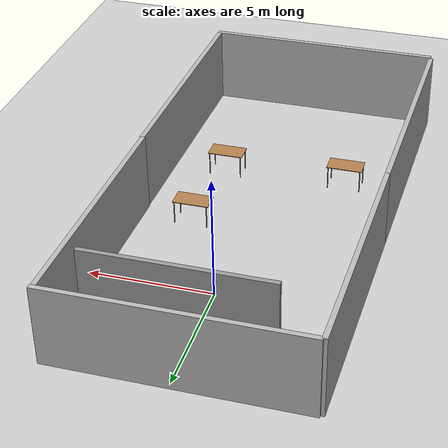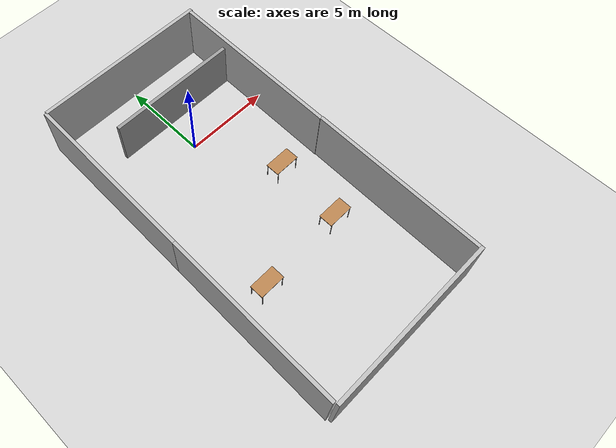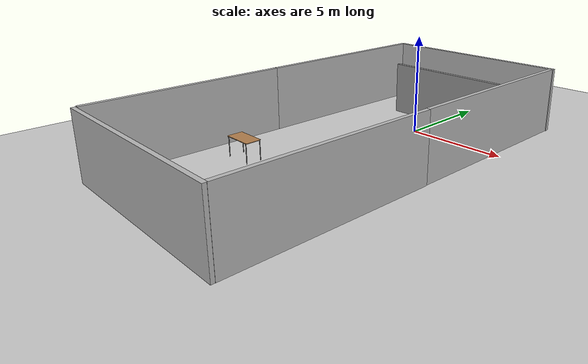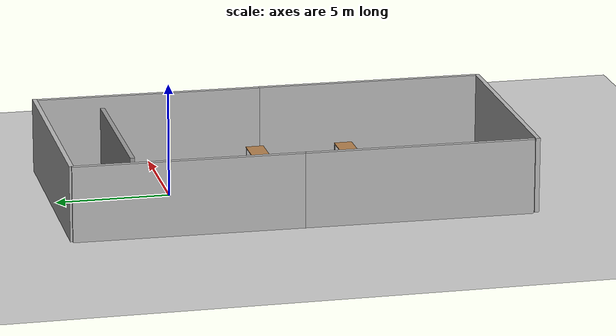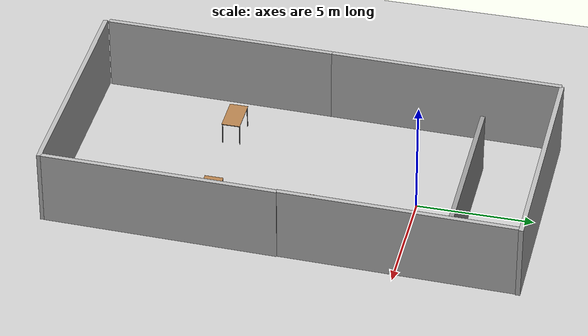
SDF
<sdf version="1.9">
 <world name="empty">
  <physics name="1ms" type="ignored">
   <max_step_size>0.001</max_step_size>
   <real_time_factor>1</real_time_factor>
   <real_time_update_rate>1000</real_time_update_rate>
  </physics>
  <plugin name="gz::sim::systems::Physics" filename="ignition-gazebo-physics-system"/>
  <plugin name="gz::sim::systems::UserCommands" filename="ignition-gazebo-user-commands-system"/>
  <plugin name="gz::sim::systems::SceneBroadcaster" filename="ignition-gazebo-scene-broadcaster-system"/>
  <plugin name="gz::sim::systems::Contact" filename="ignition-gazebo-contact-system"/>
  <gravity>0 0 -9.8</gravity>
  <magnetic_field>6e-06 2.3e-05 -4.2e-05</magnetic_field>
  <atmosphere type="adiabatic"/>
  <scene><ambient>0.4 0.4 0.4 1</ambient><background>0.7 0.7 0.7 1</background><shadows>true</shadows></scene>
  <model name="ground_plane">
   <static>true</static>
   <link name="link">
    <collision name="collision">
     <geometry><plane><normal>0 0 1</normal><size>100 100</size></plane></geometry>
    </collision>
    <visual name="visual">
     <geometry><plane><normal>0 0 1</normal><size>100 100</size></plane></geometry>
     <material>
      <ambient>0.8 0.8 0.8 1</ambient>
      <diffuse>0.8 0.8 0.8 1</diffuse>
      <specular>0.8 0.8 0.8 1</specular>
     </material>
    </visual>
    <inertial>
     <mass>1</mass>
     <inertia><ixx>1</ixx><ixy>0</ixy><ixz>0</ixz><iyy>1</iyy><iyz>0</iyz><izz>1</izz></inertia>
    </inertial>
   </link>
  </model>
  <model name="cutout_wall">
   <static>true</static>
   <link name="link">
    <pose>0 0 1.4 0 -0 0</pose>
    <collision name="collision">
     <geometry><box><size>10 0.2 3.8</size></box></geometry>
     <surface>
      <contact>
       <collide_without_contact>true</collide_without_contact>
       <collide_without_contact_bitmask>2</collide_without_contact_bitmask>
      </contact>
     </surface>
    </collision>
    <visual name="visual">
     <cast_shadows>false</cast_shadows>
     <geometry><box><size>10 0.2 3.8</size></box></geometry>
     <material>
      <script>
       <uri>https://fuel.gazebosim.org/1.0/openrobotics/models/cutout wall/2/files/materials/scripts</uri>
       <uri>https://fuel.gazebosim.org/1.0/openrobotics/models/cutout wall/2/files/materials/textures</uri>
       <name>drc_practice/cutout_wall</name>
      </script>
     </material>
    </visual>
    <sensor name="mud_contact" type="contact">
     <always_on>true</always_on>
     <update_rate>1000</update_rate>
     <contact><collision>collision</collision><topic>__default_topic__</topic></contact>
    </sensor>
    <inertial>
     <mass>1</mass>
     <inertia><ixx>1</ixx><ixy>0</ixy><ixz>0</ixz><iyy>1</iyy><iyz>0</iyz><izz>1</izz></inertia>
    </inertial>
   </link>
   <plugin name="gazebo_mud" filename="libMudPlugin.so">
    <contact_sensor_name>link/mud_contact</contact_sensor_name>
    <stiffness>0.0</stiffness>
    <damping>40.0</damping>
    <contact_surface_bitmask>2</contact_surface_bitmask>
    <link_name>drill::link</link_name>
   </plugin>
   <pose>-0.229177 5.14016 0 0 -0 0</pose>
  </model>
  <model name="cutout_wall_0">
   <static>true</static>
   <link name="link">
    <pose>0 0 1.4 0 -0 0</pose>
    <collision name="collision">
     <geometry><box><size>10 0.2 3.8</size></box></geometry>
     <surface>
      <contact>
       <collide_without_contact>true</collide_without_contact>
       <collide_without_contact_bitmask>2</collide_without_contact_bitmask>
      </contact>
     </surface>
    </collision>
    <visual name="visual">
     <cast_shadows>false</cast_shadows>
     <geometry><box><size>10 0.2 3.8</size></box></geometry>
     <material>
      <script>
       <uri>https://fuel.gazebosim.org/1.0/openrobotics/models/cutout wall/2/files/materials/scripts</uri>
       <uri>https://fuel.gazebosim.org/1.0/openrobotics/models/cutout wall/2/files/materials/textures</uri>
       <name>drc_practice/cutout_wall</name>
      </script>
     </material>
    </visual>
    <sensor name="mud_contact" type="contact">
     <always_on>true</always_on>
     <update_rate>1000</update_rate>
     <contact><collision>collision</collision><topic>__default_topic__</topic></contact>
    </sensor>
    <inertial>
     <mass>1</mass>
     <inertia><ixx>1</ixx><ixy>0</ixy><ixz>0</ixz><iyy>1</iyy><iyz>0</iyz><izz>1</izz></inertia>
    </inertial>
   </link>
   <plugin name="gazebo_mud" filename="libMudPlugin.so">
    <contact_sensor_name>link/mud_contact</contact_sensor_name>
    <stiffness>0.0</stiffness>
    <damping>40.0</damping>
    <contact_surface_bitmask>2</contact_surface_bitmask>
    <link_name>drill::link</link_name>
   </plugin>
   <pose>-0.624799 -14.9798 0 0 -0 0</pose>
  </model>
  <model name="cutout_wall_1">
   <static>true</static>
   <link name="link">
    <pose>0 0 1.4 0 -0 0</pose>
    <collision name="collision">
     <geometry><box><size>10 0.2 3.8</size></box></geometry>
     <surface>
      <contact>
       <collide_without_contact>true</collide_without_contact>
       <collide_without_contact_bitmask>2</collide_without_contact_bitmask>
      </contact>
     </surface>
    </collision>
    <visual name="visual">
     <cast_shadows>false</cast_shadows>
     <geometry><box><size>10 0.2 3.8</size></box></geometry>
     <material>
      <script>
       <uri>https://fuel.gazebosim.org/1.0/openrobotics/models/cutout wall/2/files/materials/scripts</uri>
       <uri>https://fuel.gazebosim.org/1.0/openrobotics/models/cutout wall/2/files/materials/textures</uri>
       <name>drc_practice/cutout_wall</name>
      </script>
     </material>
    </visual>
    <sensor name="mud_contact" type="contact">
     <always_on>true</always_on>
     <update_rate>1000</update_rate>
     <contact><collision>collision</collision><topic>__default_topic__</topic></contact>
    </sensor>
    <inertial>
     <mass>1</mass>
     <inertia><ixx>1</ixx><ixy>0</ixy><ixz>0</ixz><iyy>1</iyy><iyz>0</iyz><izz>1</izz></inertia>
    </inertial>
   </link>
   <plugin name="gazebo_mud" filename="libMudPlugin.so">
    <contact_sensor_name>link/mud_contact</contact_sensor_name>
    <stiffness>0.0</stiffness>
    <damping>40.0</damping>
    <contact_surface_bitmask>2</contact_surface_bitmask>
    <link_name>drill::link</link_name>
   </plugin>
   <pose>4.53826 0.058587 0 0 0 -1.58982</pose>
  </model>
  <model name="cutout_wall_1_1">
   <static>true</static>
   <link name="link">
    <pose>0 0 1.4 0 0 0</pose>
    <collision name="collision">
     <geometry><box><size>10 0.2 3.8</size></box></geometry>
     <surface>
      <contact>
       <collide_without_contact>true</collide_without_contact>
       <collide_without_contact_bitmask>2</collide_without_contact_bitmask>
      </contact>
     </surface>
    </collision>
    <visual name="visual">
     <cast_shadows>false</cast_shadows>
     <geometry><box><size>10 0.2 3.8</size></box></geometry>
     <material>
      <script>
       <uri>https://fuel.gazebosim.org/1.0/openrobotics/models/cutout wall/2/files/materials/scripts</uri>
       <uri>https://fuel.gazebosim.org/1.0/openrobotics/models/cutout wall/2/files/materials/textures</uri>
       <name>drc_practice/cutout_wall</name>
      </script>
     </material>
    </visual>
    <sensor name="mud_contact" type="contact">
     <always_on>true</always_on>
     <update_rate>1000</update_rate>
     <contact><collision>collision</collision><topic>__default_topic__</topic></contact>
    </sensor>
   </link>
   <plugin name="gazebo_mud" filename="libMudPlugin.so">
    <contact_sensor_name>link/mud_contact</contact_sensor_name>
    <stiffness>0.0</stiffness>
    <damping>40.0</damping>
    <contact_surface_bitmask>2</contact_surface_bitmask>
    <link_name>drill::link</link_name>
   </plugin>
   <pose>4.37798 -9.91106 0 0 0 -1.58982</pose>
  </model>
  <model name="cutout_wall_1_2">
   <static>true</static>
   <link name="link">
    <pose>0 0 1.4 0 0 0</pose>
    <collision name="collision">
     <geometry><box><size>10 0.2 3.8</size></box></geometry>
     <surface>
      <contact>
       <collide_without_contact>true</collide_without_contact>
       <collide_without_contact_bitmask>2</collide_without_contact_bitmask>
      </contact>
     </surface>
    </collision>
    <visual name="visual">
     <cast_shadows>false</cast_shadows>
     <geometry><box><size>10 0.2 3.8</size></box></geometry>
     <material>
      <script>
       <uri>https://fuel.gazebosim.org/1.0/openrobotics/models/cutout wall/2/files/materials/scripts</uri>
       <uri>https://fuel.gazebosim.org/1.0/openrobotics/models/cutout wall/2/files/materials/textures</uri>
       <name>drc_practice/cutout_wall</name>
      </script>
     </material>
    </visual>
    <sensor name="mud_contact" type="contact">
     <always_on>true</always_on>
     <update_rate>1000</update_rate>
     <contact><collision>collision</collision><topic>__default_topic__</topic></contact>
    </sensor>
   </link>
   <plugin name="gazebo_mud" filename="libMudPlugin.so">
    <contact_sensor_name>link/mud_contact</contact_sensor_name>
    <stiffness>0.0</stiffness>
    <damping>40.0</damping>
    <contact_surface_bitmask>2</contact_surface_bitmask>
    <link_name>drill::link</link_name>
   </plugin>
   <pose>-5.36664 0.140854 0 0 0 -1.58982</pose>
  </model>
  <model name="cutout_wall_1_3">
   <static>true</static>
   <link name="link">
    <pose>0 0 1.4 0 0 0</pose>
    <collision name="collision">
     <geometry><box><size>10 0.2 3.8</size></box></geometry>
     <surface>
      <contact>
       <collide_without_contact>true</collide_without_contact>
       <collide_without_contact_bitmask>2</collide_without_contact_bitmask>
      </contact>
     </surface>
    </collision>
    <visual name="visual">
     <cast_shadows>false</cast_shadows>
     <geometry><box><size>10 0.2 3.8</size></box></geometry>
     <material>
      <script>
       <uri>https://fuel.gazebosim.org/1.0/openrobotics/models/cutout wall/2/files/materials/scripts</uri>
       <uri>https://fuel.gazebosim.org/1.0/openrobotics/models/cutout wall/2/files/materials/textures</uri>
       <name>drc_practice/cutout_wall</name>
      </script>
     </material>
    </visual>
    <sensor name="mud_contact" type="contact">
     <always_on>true</always_on>
     <update_rate>1000</update_rate>
     <contact><collision>collision</collision><topic>__default_topic__</topic></contact>
    </sensor>
   </link>
   <plugin name="gazebo_mud" filename="libMudPlugin.so">
    <contact_sensor_name>link/mud_contact</contact_sensor_name>
    <stiffness>0.0</stiffness>
    <damping>40.0</damping>
    <contact_surface_bitmask>2</contact_surface_bitmask>
    <link_name>drill::link</link_name>
   </plugin>
   <pose>-5.55649 -9.82094 0 0 0 -1.58982</pose>
  </model>
  <model name="Table">
   <static>true</static>
   <link name="link">
    <collision name="surface">
     <pose>0 0 1.0 0 0 0</pose>
     <geometry><box><size>1.5 0.8 0.03</size></box></geometry>
     <surface><friction><ode><mu>0.59999999999999998</mu><mu2>0.59999999999999998</mu2></ode></friction></surface>
    </collision>
    <visual name="visual1">
     <pose>0 0 1.0 0 0 0</pose>
     <geometry><box><size>1.5 0.8 0.03</size></box></geometry>
     <material>
      <diffuse>1 1 1 1</diffuse>
      <script><uri>file://media/materials/scripts/gazebo.material</uri><name>Gazebo/Wood</name></script>
      <pbr>
       <metal>
        <albedo_map>https://fuel.gazebosim.org/1.0/openrobotics/models/table/4/files/Table_Diffuse.jpg</albedo_map>
       </metal>
      </pbr>
     </material>
    </visual>
    <collision name="front_left_leg">
     <pose>0.68 0.38 0.5 0 0 0</pose>
     <geometry><cylinder><radius>0.02</radius><length>1</length></cylinder></geometry>
    </collision>
    <visual name="front_left_leg">
     <pose>0.68 0.38 0.5 0 0 0</pose>
     <geometry><cylinder><radius>0.02</radius><length>1</length></cylinder></geometry>
     <material>
      <diffuse>0.5 0.5 0.5 1</diffuse>
      <script><uri>file://media/materials/scripts/gazebo.material</uri><name>Gazebo/Grey</name></script>
     </material>
    </visual>
    <collision name="front_right_leg">
     <pose>0.68 -0.38 0.5 0 0 0</pose>
     <geometry><cylinder><radius>0.02</radius><length>1</length></cylinder></geometry>
    </collision>
    <visual name="front_right_leg">
     <pose>0.68 -0.38 0.5 0 0 0</pose>
     <geometry><cylinder><radius>0.02</radius><length>1</length></cylinder></geometry>
     <material>
      <diffuse>0.5 0.5 0.5 1</diffuse>
      <script><uri>file://media/materials/scripts/gazebo.material</uri><name>Gazebo/Grey</name></script>
     </material>
    </visual>
    <collision name="back_right_leg">
     <pose>-0.68 -0.38 0.5 0 0 0</pose>
     <geometry><cylinder><radius>0.02</radius><length>1</length></cylinder></geometry>
    </collision>
    <visual name="back_right_leg">
     <pose>-0.68 -0.38 0.5 0 0 0</pose>
     <geometry><cylinder><radius>0.02</radius><length>1</length></cylinder></geometry>
     <material>
      <diffuse>0.5 0.5 0.5 1</diffuse>
      <script><uri>file://media/materials/scripts/gazebo.material</uri><name>Gazebo/Grey</name></script>
     </material>
    </visual>
    <collision name="back_left_leg">
     <pose>-0.68 0.38 0.5 0 0 0</pose>
     <geometry><cylinder><radius>0.02</radius><length>1</length></cylinder></geometry>
    </collision>
    <visual name="back_left_leg">
     <pose>-0.68 0.38 0.5 0 0 0</pose>
     <geometry><cylinder><radius>0.02</radius><length>1</length></cylinder></geometry>
     <material>
      <diffuse>0.5 0.5 0.5 1</diffuse>
      <script><uri>file://media/materials/scripts/gazebo.material</uri><name>Gazebo/Grey</name></script>
     </material>
    </visual>
    <inertial>
     <mass>1</mass>
     <inertia><ixx>1</ixx><ixy>0</ixy><ixz>0</ixz><iyy>1</iyy><iyz>0</iyz><izz>1</izz></inertia>
    </inertial>
   </link>
   <pose>-3.14807 -8.60292 0 0 -0 0</pose>
  </model>
  <model name="Table_1">
   <static>true</static>
   <link name="link">
    <collision name="surface">
     <pose>0 0 1.0 0 0 0</pose>
     <geometry><box><size>1.5 0.8 0.03</size></box></geometry>
     <surface><friction><ode><mu>0.59999999999999998</mu><mu2>0.59999999999999998</mu2></ode></friction></surface>
    </collision>
    <visual name="visual1">
     <pose>0 0 1.0 0 0 0</pose>
     <geometry><box><size>1.5 0.8 0.03</size></box></geometry>
     <material>
      <diffuse>1 1 1 1</diffuse>
      <script><uri>file://media/materials/scripts/gazebo.material</uri><name>Gazebo/Wood</name></script>
      <pbr>
       <metal>
        <albedo_map>https://fuel.gazebosim.org/1.0/openrobotics/models/table/4/files/Table_Diffuse.jpg</albedo_map>
       </metal>
      </pbr>
     </material>
    </visual>
    <collision name="front_left_leg">
     <pose>0.68 0.38 0.5 0 0 0</pose>
     <geometry><cylinder><radius>0.02</radius><length>1</length></cylinder></geometry>
    </collision>
    <visual name="front_left_leg">
     <pose>0.68 0.38 0.5 0 0 0</pose>
     <geometry><cylinder><radius>0.02</radius><length>1</length></cylinder></geometry>
     <material>
      <diffuse>0.5 0.5 0.5 1</diffuse>
      <script><uri>file://media/materials/scripts/gazebo.material</uri><name>Gazebo/Grey</name></script>
     </material>
    </visual>
    <collision name="front_right_leg">
     <pose>0.68 -0.38 0.5 0 0 0</pose>
     <geometry><cylinder><radius>0.02</radius><length>1</length></cylinder></geometry>
    </collision>
    <visual name="front_right_leg">
     <pose>0.68 -0.38 0.5 0 0 0</pose>
     <geometry><cylinder><radius>0.02</radius><length>1</length></cylinder></geometry>
     <material>
      <diffuse>0.5 0.5 0.5 1</diffuse>
      <script><uri>file://media/materials/scripts/gazebo.material</uri><name>Gazebo/Grey</name></script>
     </material>
    </visual>
    <collision name="back_right_leg">
     <pose>-0.68 -0.38 0.5 0 0 0</pose>
     <geometry><cylinder><radius>0.02</radius><length>1</length></cylinder></geometry>
    </collision>
    <visual name="back_right_leg">
     <pose>-0.68 -0.38 0.5 0 0 0</pose>
     <geometry><cylinder><radius>0.02</radius><length>1</length></cylinder></geometry>
     <material>
      <diffuse>0.5 0.5 0.5 1</diffuse>
      <script><uri>file://media/materials/scripts/gazebo.material</uri><name>Gazebo/Grey</name></script>
     </material>
    </visual>
    <collision name="back_left_leg">
     <pose>-0.68 0.38 0.5 0 0 0</pose>
     <geometry><cylinder><radius>0.02</radius><length>1</length></cylinder></geometry>
    </collision>
    <visual name="back_left_leg">
     <pose>-0.68 0.38 0.5 0 0 0</pose>
     <geometry><cylinder><radius>0.02</radius><length>1</length></cylinder></geometry>
     <material>
      <diffuse>0.5 0.5 0.5 1</diffuse>
      <script><uri>file://media/materials/scripts/gazebo.material</uri><name>Gazebo/Grey</name></script>
     </material>
    </visual>
   </link>
   <pose>1.99723 -8.39281 0 0 -0 0</pose>
  </model>
  <model name="Table_2">
   <static>true</static>
   <link name="link">
    <collision name="surface">
     <pose>0 0 1.0 0 0 0</pose>
     <geometry><box><size>1.5 0.8 0.03</size></box></geometry>
     <surface><friction><ode><mu>0.59999999999999998</mu><mu2>0.59999999999999998</mu2></ode></friction></surface>
    </collision>
    <visual name="visual1">
     <pose>0 0 1.0 0 0 0</pose>
     <geometry><box><size>1.5 0.8 0.03</size></box></geometry>
     <material>
      <diffuse>1 1 1 1</diffuse>
      <script><uri>file://media/materials/scripts/gazebo.material</uri><name>Gazebo/Wood</name></script>
      <pbr>
       <metal>
        <albedo_map>https://fuel.gazebosim.org/1.0/openrobotics/models/table/4/files/Table_Diffuse.jpg</albedo_map>
       </metal>
      </pbr>
     </material>
    </visual>
    <collision name="front_left_leg">
     <pose>0.68 0.38 0.5 0 0 0</pose>
     <geometry><cylinder><radius>0.02</radius><length>1</length></cylinder></geometry>
    </collision>
    <visual name="front_left_leg">
     <pose>0.68 0.38 0.5 0 0 0</pose>
     <geometry><cylinder><radius>0.02</radius><length>1</length></cylinder></geometry>
     <material>
      <diffuse>0.5 0.5 0.5 1</diffuse>
      <script><uri>file://media/materials/scripts/gazebo.material</uri><name>Gazebo/Grey</name></script>
     </material>
    </visual>
    <collision name="front_right_leg">
     <pose>0.68 -0.38 0.5 0 0 0</pose>
     <geometry><cylinder><radius>0.02</radius><length>1</length></cylinder></geometry>
    </collision>
    <visual name="front_right_leg">
     <pose>0.68 -0.38 0.5 0 0 0</pose>
     <geometry><cylinder><radius>0.02</radius><length>1</length></cylinder></geometry>
     <material>
      <diffuse>0.5 0.5 0.5 1</diffuse>
      <script><uri>file://media/materials/scripts/gazebo.material</uri><name>Gazebo/Grey</name></script>
     </material>
    </visual>
    <collision name="back_right_leg">
     <pose>-0.68 -0.38 0.5 0 0 0</pose>
     <geometry><cylinder><radius>0.02</radius><length>1</length></cylinder></geometry>
    </collision>
    <visual name="back_right_leg">
     <pose>-0.68 -0.38 0.5 0 0 0</pose>
     <geometry><cylinder><radius>0.02</radius><length>1</length></cylinder></geometry>
     <material>
      <diffuse>0.5 0.5 0.5 1</diffuse>
      <script><uri>file://media/materials/scripts/gazebo.material</uri><name>Gazebo/Grey</name></script>
     </material>
    </visual>
    <collision name="back_left_leg">
     <pose>-0.68 0.38 0.5 0 0 0</pose>
     <geometry><cylinder><radius>0.02</radius><length>1</length></cylinder></geometry>
    </collision>
    <visual name="back_left_leg">
     <pose>-0.68 0.38 0.5 0 0 0</pose>
     <geometry><cylinder><radius>0.02</radius><length>1</length></cylinder></geometry>
     <material>
      <diffuse>0.5 0.5 0.5 1</diffuse>
      <script><uri>file://media/materials/scripts/gazebo.material</uri><name>Gazebo/Grey</name></script>
     </material>
    </visual>
   </link>
   <pose>2.25704 -4.42073 0 0 -0 0</pose>
  </model>
  <model name="grey_wall">
   <static>true</static>
   <link name="link">
    <pose>0 0 1.4 0 -0 0</pose>
    <collision name="collision"><geometry><box><size>7.5 0.2 2.8</size></box></geometry></collision>
    <visual name="visual">
     <cast_shadows>false</cast_shadows>
     <geometry><box><size>7.5 0.2 2.8</size></box></geometry>
     <material>
      <script>
       <uri>https://fuel.gazebosim.org/1.0/openrobotics/models/grey wall/3/files/materials/scripts</uri>
       <uri>https://fuel.gazebosim.org/1.0/openrobotics/models/grey wall/3/files/materials/textures</uri>
       <name>vrc/grey_wall</name>
      </script>
     </material>
    </visual>
    <inertial>
     <mass>1</mass>
     <inertia><ixx>1</ixx><ixy>0</ixy><ixz>0</ixz><iyy>1</iyy><iyz>0</iyz><izz>1</izz></inertia>
    </inertial>
   </link>
   <pose>0.661189 2.16524 0 0 -0 0</pose>
  </model>
  <light name="sun" type="directional">
   <pose>0 0 10 0 -0 0</pose>
   <intensity>1</intensity>
   <direction>-0.5 0.1 -0.9</direction>
   <diffuse>0.8 0.8 0.8 1</diffuse>
   <specular>0.2 0.2 0.2 1</specular>
   <attenuation>
    <range>1000</range>
    <linear>0.01</linear>
    <constant>0.90000000000000002</constant>
    <quadratic>0.001</quadratic>
   </attenuation>
   <spot><inner_angle>0</inner_angle><outer_angle>0</outer_angle><falloff>0</falloff></spot>
  </light>
 </world>
</sdf>
